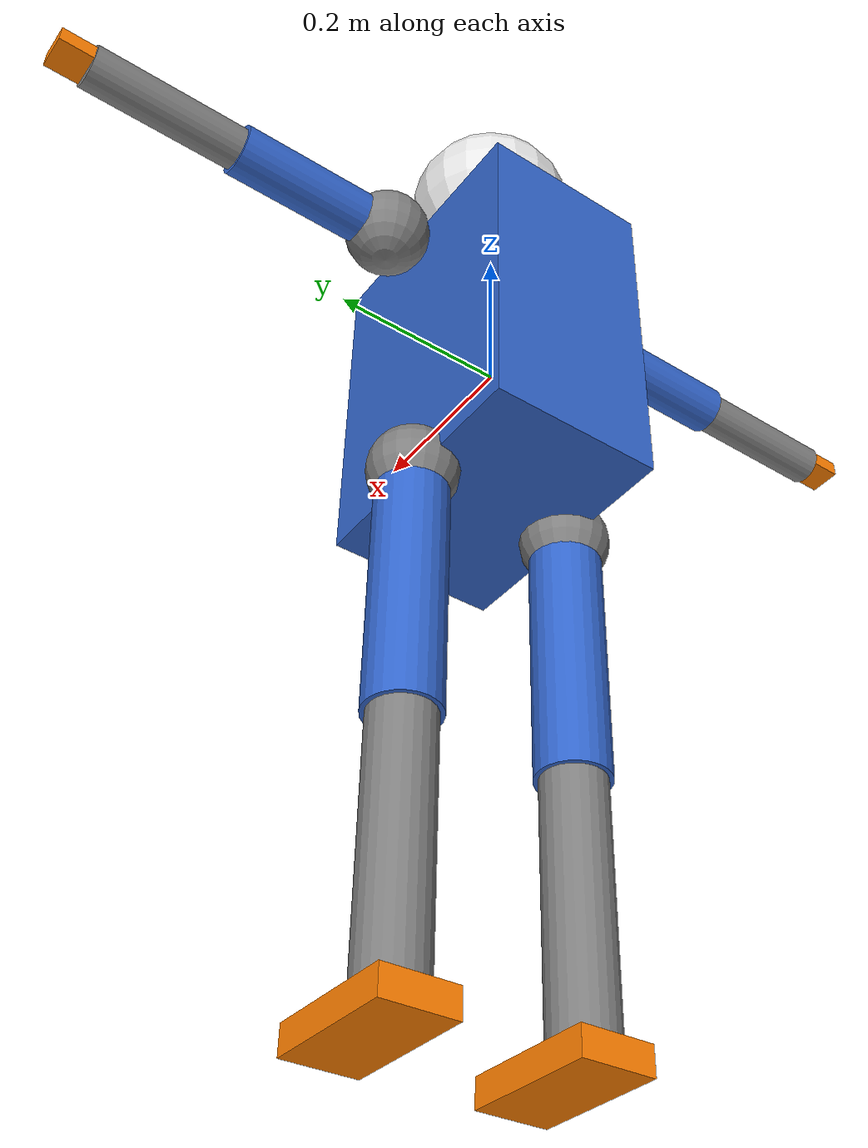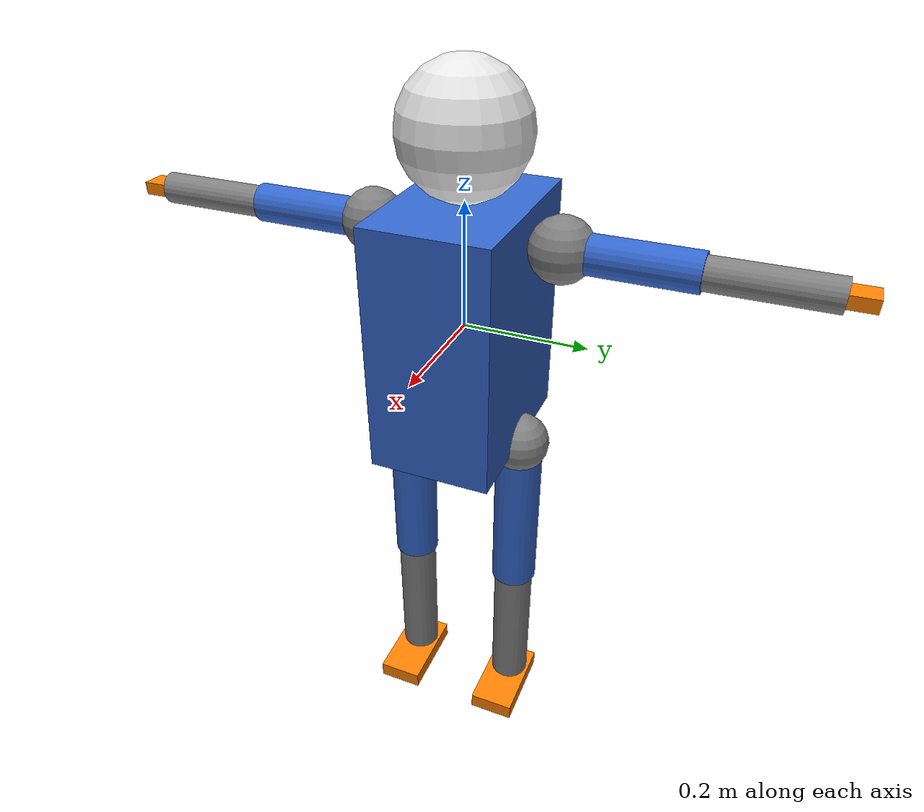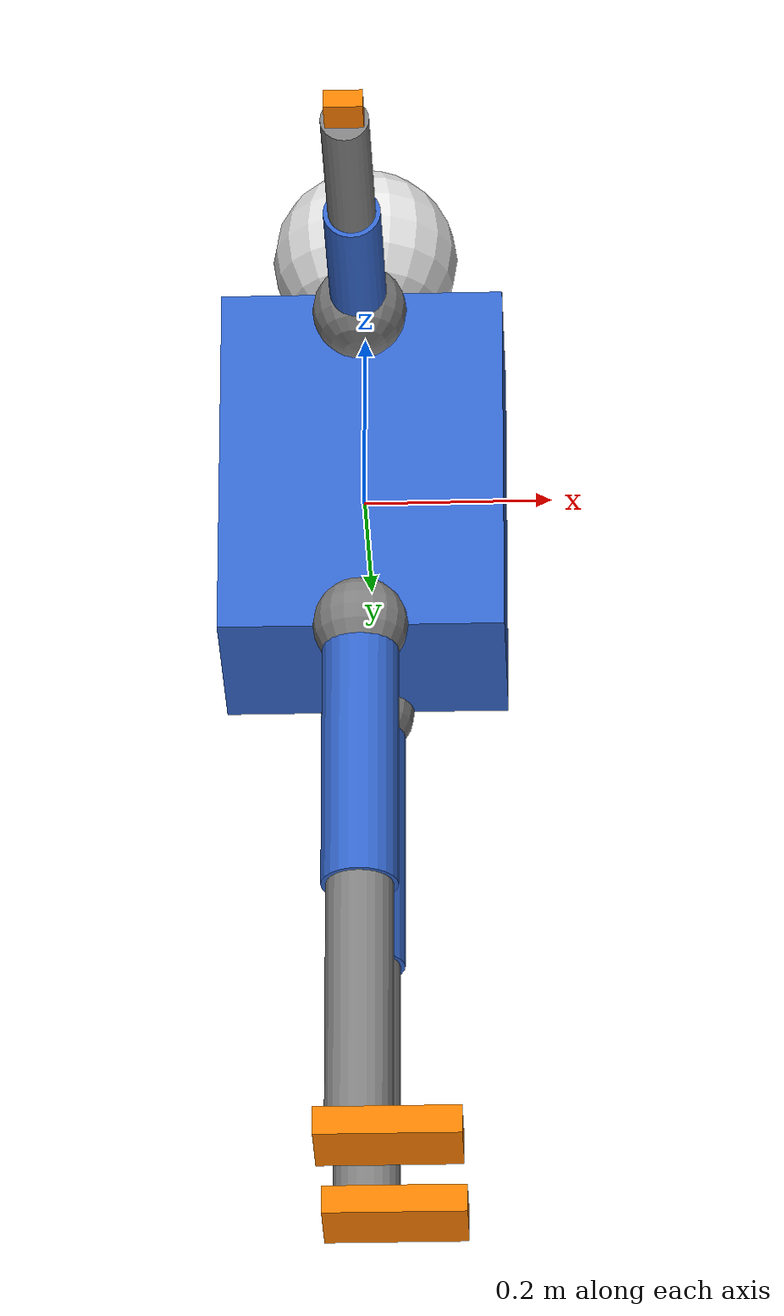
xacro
<?xml version="1.0"?>
<robot xmlns:xacro="http://www.ros.org/wiki/xacro" name="humanoid_xacro">

  <!-- ==================== PROPERTIES ==================== -->
  <!-- Physical properties - easy to tune in one place -->
  <xacro:property name="torso_mass" value="10.0"/>
  <xacro:property name="head_mass" value="1.0"/>
  <xacro:property name="upper_arm_mass" value="1.0"/>
  <xacro:property name="forearm_mass" value="0.8"/>
  <xacro:property name="hand_mass" value="0.3"/>
  <xacro:property name="thigh_mass" value="2.0"/>
  <xacro:property name="shin_mass" value="1.5"/>
  <xacro:property name="foot_mass" value="0.5"/>

  <!-- Dimensions -->
  <xacro:property name="torso_length" value="0.4"/>
  <xacro:property name="torso_width" value="0.3"/>
  <xacro:property name="torso_depth" value="0.2"/>
  <xacro:property name="head_radius" value="0.1"/>
  <xacro:property name="upper_arm_length" value="0.2"/>
  <xacro:property name="forearm_length" value="0.18"/>
  <xacro:property name="thigh_length" value="0.3"/>
  <xacro:property name="shin_length" value="0.28"/>

  <!-- Joint limits -->
  <xacro:property name="shoulder_limit" value="3.14"/>
  <xacro:property name="elbow_limit" value="2.5"/>
  <xacro:property name="hip_limit" value="1.57"/>
  <xacro:property name="knee_limit" value="2.5"/>
  <xacro:property name="ankle_limit" value="0.5"/>

  <!-- ==================== MATERIALS ==================== -->
  <material name="blue">
    <color rgba="0.2 0.4 0.8 1.0"/>
  </material>

  <material name="gray">
    <color rgba="0.5 0.5 0.5 1.0"/>
  </material>

  <material name="orange">
    <color rgba="1.0 0.5 0.0 1.0"/>
  </material>

  <material name="white">
    <color rgba="0.9 0.9 0.9 1.0"/>
  </material>

  <!-- ==================== MACROS ==================== -->

  <!-- Macro for calculating box inertia -->
  <xacro:macro name="box_inertia" params="m x y z">
    <inertial>
      <mass value="${m}"/>
      <inertia
        ixx="${m*(y*y+z*z)/12}" ixy="0" ixz="0"
        iyy="${m*(x*x+z*z)/12}" iyz="0"
        izz="${m*(x*x+y*y)/12}"/>
    </inertial>
  </xacro:macro>

  <!-- Macro for calculating cylinder inertia -->
  <xacro:macro name="cylinder_inertia" params="m r h">
    <inertial>
      <mass value="${m}"/>
      <inertia
        ixx="${m*(3*r*r+h*h)/12}" ixy="0" ixz="0"
        iyy="${m*(3*r*r+h*h)/12}" iyz="0"
        izz="${m*r*r/2}"/>
    </inertial>
  </xacro:macro>

  <!-- Macro for sphere inertia -->
  <xacro:macro name="sphere_inertia" params="m r">
    <inertial>
      <mass value="${m}"/>
      <inertia
        ixx="${2*m*r*r/5}" ixy="0" ixz="0"
        iyy="${2*m*r*r/5}" iyz="0"
        izz="${2*m*r*r/5}"/>
    </inertial>
  </xacro:macro>

  <!-- Macro for creating an arm -->
  <xacro:macro name="arm" params="side reflect">
    <!-- Shoulder -->
    <link name="${side}_shoulder">
      <visual>
        <geometry>
          <sphere radius="0.05"/>
        </geometry>
        <material name="gray"/>
      </visual>
      <collision>
        <geometry>
          <sphere radius="0.05"/>
        </geometry>
      </collision>
      <xacro:sphere_inertia m="0.5" r="0.05"/>
    </link>

    <joint name="${side}_shoulder_joint" type="revolute">
      <parent link="base_link"/>
      <child link="${side}_shoulder"/>
      <origin xyz="0 ${reflect*0.15} 0.15" rpy="0 0 0"/>
      <axis xyz="0 1 0"/>
      <limit lower="${-shoulder_limit}" upper="${shoulder_limit}" effort="50" velocity="2.0"/>
    </joint>

    <!-- Upper Arm -->
    <link name="${side}_upper_arm">
      <visual>
        <geometry>
          <cylinder radius="0.03" length="${upper_arm_length}"/>
        </geometry>
        <origin xyz="0 ${reflect*upper_arm_length/2} 0" rpy="1.5708 0 0"/>
        <material name="blue"/>
      </visual>
      <collision>
        <geometry>
          <cylinder radius="0.03" length="${upper_arm_length}"/>
        </geometry>
        <origin xyz="0 ${reflect*upper_arm_length/2} 0" rpy="1.5708 0 0"/>
      </collision>
      <xacro:cylinder_inertia m="${upper_arm_mass}" r="0.03" h="${upper_arm_length}"/>
    </link>

    <joint name="${side}_upper_arm_joint" type="fixed">
      <parent link="${side}_shoulder"/>
      <child link="${side}_upper_arm"/>
      <origin xyz="0 0 0" rpy="0 0 0"/>
    </joint>

    <!-- Forearm -->
    <link name="${side}_forearm">
      <visual>
        <geometry>
          <cylinder radius="0.025" length="${forearm_length}"/>
        </geometry>
        <origin xyz="0 ${reflect*forearm_length/2} 0" rpy="1.5708 0 0"/>
        <material name="gray"/>
      </visual>
      <collision>
        <geometry>
          <cylinder radius="0.025" length="${forearm_length}"/>
        </geometry>
        <origin xyz="0 ${reflect*forearm_length/2} 0" rpy="1.5708 0 0"/>
      </collision>
      <xacro:cylinder_inertia m="${forearm_mass}" r="0.025" h="${forearm_length}"/>
    </link>

    <joint name="${side}_elbow_joint" type="revolute">
      <parent link="${side}_upper_arm"/>
      <child link="${side}_forearm"/>
      <origin xyz="0 ${reflect*upper_arm_length} 0" rpy="0 0 0"/>
      <axis xyz="1 0 0"/>
      <limit lower="0" upper="${elbow_limit}" effort="30" velocity="2.0"/>
    </joint>

    <!-- Hand -->
    <link name="${side}_hand">
      <visual>
        <geometry>
          <box size="0.04 0.08 0.02"/>
        </geometry>
        <material name="orange"/>
      </visual>
      <collision>
        <geometry>
          <box size="0.04 0.08 0.02"/>
        </geometry>
      </collision>
      <xacro:box_inertia m="${hand_mass}" x="0.04" y="0.08" z="0.02"/>
    </link>

    <joint name="${side}_wrist_joint" type="revolute">
      <parent link="${side}_forearm"/>
      <child link="${side}_hand"/>
      <origin xyz="0 ${reflect*forearm_length} 0" rpy="0 0 0"/>
      <axis xyz="0 1 0"/>
      <limit lower="-1.0" upper="1.0" effort="10" velocity="2.0"/>
    </joint>
  </xacro:macro>

  <!-- Macro for creating a leg -->
  <xacro:macro name="leg" params="side reflect">
    <!-- Hip -->
    <link name="${side}_hip">
      <visual>
        <geometry>
          <sphere radius="0.05"/>
        </geometry>
        <material name="gray"/>
      </visual>
      <collision>
        <geometry>
          <sphere radius="0.05"/>
        </geometry>
      </collision>
      <xacro:sphere_inertia m="0.5" r="0.05"/>
    </link>

    <joint name="${side}_hip_joint" type="revolute">
      <parent link="base_link"/>
      <child link="${side}_hip"/>
      <origin xyz="0 ${reflect*0.1} -0.2" rpy="0 0 0"/>
      <axis xyz="0 1 0"/>
      <limit lower="${-hip_limit}" upper="${hip_limit}" effort="100" velocity="2.0"/>
    </joint>

    <!-- Thigh -->
    <link name="${side}_thigh">
      <visual>
        <geometry>
          <cylinder radius="0.04" length="${thigh_length}"/>
        </geometry>
        <origin xyz="0 0 ${-thigh_length/2}" rpy="0 0 0"/>
        <material name="blue"/>
      </visual>
      <collision>
        <geometry>
          <cylinder radius="0.04" length="${thigh_length}"/>
        </geometry>
        <origin xyz="0 0 ${-thigh_length/2}" rpy="0 0 0"/>
      </collision>
      <xacro:cylinder_inertia m="${thigh_mass}" r="0.04" h="${thigh_length}"/>
    </link>

    <joint name="${side}_thigh_joint" type="fixed">
      <parent link="${side}_hip"/>
      <child link="${side}_thigh"/>
      <origin xyz="0 0 0" rpy="0 0 0"/>
    </joint>

    <!-- Shin -->
    <link name="${side}_shin">
      <visual>
        <geometry>
          <cylinder radius="0.035" length="${shin_length}"/>
        </geometry>
        <origin xyz="0 0 ${-shin_length/2}" rpy="0 0 0"/>
        <material name="gray"/>
      </visual>
      <collision>
        <geometry>
          <cylinder radius="0.035" length="${shin_length}"/>
        </geometry>
        <origin xyz="0 0 ${-shin_length/2}" rpy="0 0 0"/>
      </collision>
      <xacro:cylinder_inertia m="${shin_mass}" r="0.035" h="${shin_length}"/>
    </link>

    <joint name="${side}_knee_joint" type="revolute">
      <parent link="${side}_thigh"/>
      <child link="${side}_shin"/>
      <origin xyz="0 0 ${-thigh_length}" rpy="0 0 0"/>
      <axis xyz="0 1 0"/>
      <limit lower="0" upper="${knee_limit}" effort="80" velocity="2.0"/>
    </joint>

    <!-- Foot -->
    <link name="${side}_foot">
      <visual>
        <geometry>
          <box size="0.15 0.08 0.03"/>
        </geometry>
        <origin xyz="0.03 0 0" rpy="0 0 0"/>
        <material name="orange"/>
      </visual>
      <collision>
        <geometry>
          <box size="0.15 0.08 0.03"/>
        </geometry>
        <origin xyz="0.03 0 0" rpy="0 0 0"/>
      </collision>
      <xacro:box_inertia m="${foot_mass}" x="0.15" y="0.08" z="0.03"/>
    </link>

    <joint name="${side}_ankle_joint" type="revolute">
      <parent link="${side}_shin"/>
      <child link="${side}_foot"/>
      <origin xyz="0 0 ${-shin_length}" rpy="0 0 0"/>
      <axis xyz="0 1 0"/>
      <limit lower="${-ankle_limit}" upper="${ankle_limit}" effort="50" velocity="2.0"/>
    </joint>
  </xacro:macro>

  <!-- ==================== ROBOT STRUCTURE ==================== -->

  <!-- Base/Torso -->
  <link name="base_link">
    <visual>
      <geometry>
        <box size="${torso_width} ${torso_depth} ${torso_length}"/>
      </geometry>
      <material name="blue"/>
    </visual>
    <collision>
      <geometry>
        <box size="${torso_width} ${torso_depth} ${torso_length}"/>
      </geometry>
    </collision>
    <xacro:box_inertia m="${torso_mass}" x="${torso_width}" y="${torso_depth}" z="${torso_length}"/>
  </link>

  <!-- Head -->
  <link name="head">
    <visual>
      <geometry>
        <sphere radius="${head_radius}"/>
      </geometry>
      <material name="white"/>
    </visual>
    <collision>
      <geometry>
        <sphere radius="${head_radius}"/>
      </geometry>
    </collision>
    <xacro:sphere_inertia m="${head_mass}" r="${head_radius}"/>
  </link>

  <joint name="head_joint" type="revolute">
    <parent link="base_link"/>
    <child link="head"/>
    <origin xyz="0 0 ${torso_length/2 + head_radius}" rpy="0 0 0"/>
    <axis xyz="0 0 1"/>
    <limit lower="-1.57" upper="1.57" effort="10" velocity="1.0"/>
  </joint>

  <!-- Arms (using macro) -->
  <xacro:arm side="left" reflect="1"/>
  <xacro:arm side="right" reflect="-1"/>

  <!-- Legs (using macro) -->
  <xacro:leg side="left" reflect="1"/>
  <xacro:leg side="right" reflect="-1"/>

</robot>
